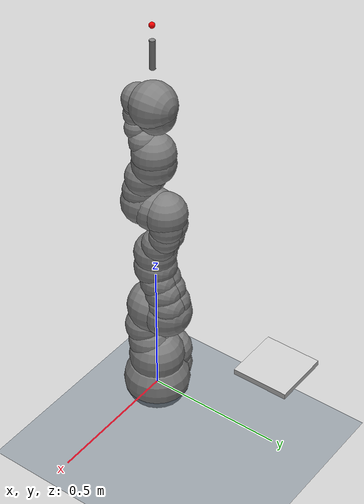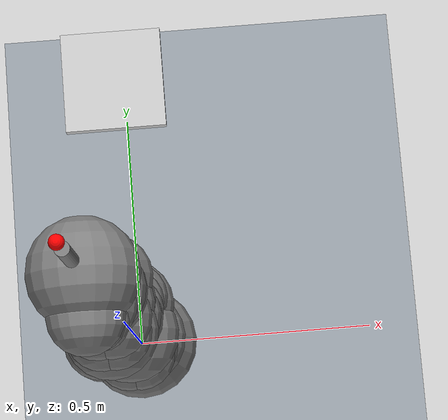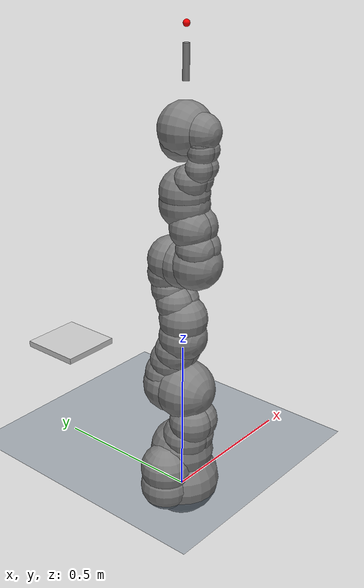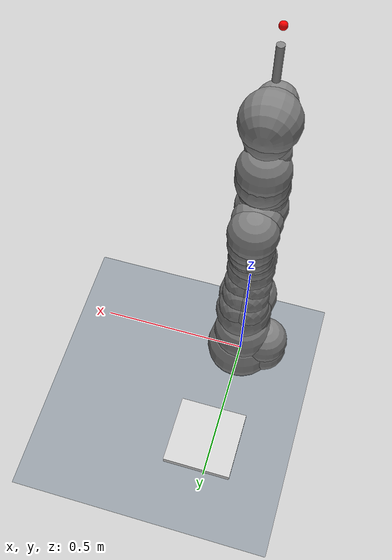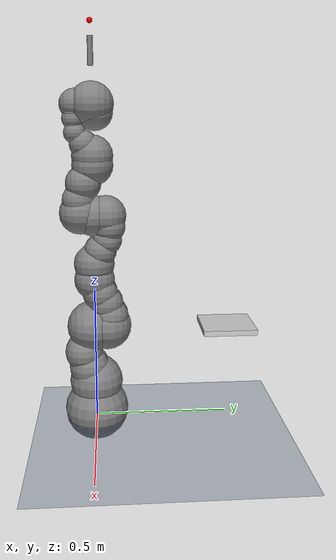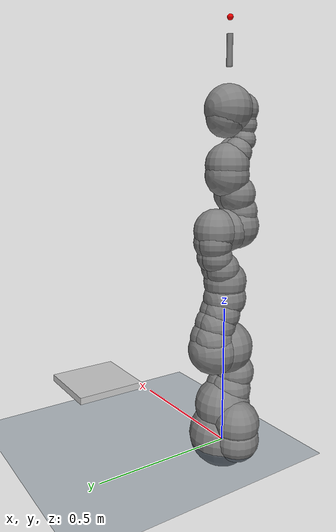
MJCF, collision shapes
<mujoco model="iiwa14">
  <compiler angle="radian" meshdir="assets" />

  <option integrator="implicitfast"  gravity="0 0 0" timestep="0.001" />

  <visual>
    <scale forcewidth="0.01" framewidth="0.01" contactwidth="0.01"/>
    <global offwidth="1920" offheight="1080"/>
  </visual>

  <default>
    <default class="iiwa">
      <material specular="0.5" shininess="0.25"/>

      <default class="visual">
        <geom type="mesh" contype="0" conaffinity="0" group="2" material="gray"/>
      </default>
      <default class="collision">
        <geom group="3"/>
      </default>
      <site size="0.001" rgba="1 0 0 1" group="4"/>

    </default>
    <joint armature="0" damping="0" limited="false" />
  </default>

  <asset>
    <texture name="grid" type="2d" builtin="checker" width="512" height="512" rgb1=".1 .2 .3" rgb2=".2 .3 .4"/>
    <material name="grid" texture="grid" texrepeat="1 1" texuniform="true" reflectance="0."/>

    <texture type="skybox" builtin="gradient" rgb1="0.3 0.5 0.7" rgb2="0 0 0" width="512" height="3072"/>
    <texture type="2d" name="groundplane" builtin="checker" mark="edge" rgb1="0.2 0.3 0.4" rgb2="0.1 0.2 0.3" markrgb="0.8 0.8 0.8" width="300" height="300"/>
    <material name="groundplane" texture="groundplane" texuniform="true" texrepeat="5 5" reflectance="0.2"/>

    <material class="iiwa" name="gray" rgba="0.4 0.4 0.4 1"/>
    <material class="iiwa" name="light_gray" rgba="0.6 0.6 0.6 1"/>
    <material class="iiwa" name="black" rgba="0 0 0 1"/>
    <material class="iiwa" name="orange" rgba="1 0.423529 0.0392157 1"/>

    <mesh file="link_0.obj"/>
    <mesh file="link_1.obj"/>
    <mesh file="link_2_orange.obj"/>
    <mesh file="link_2_grey.obj"/>
    <mesh file="link_3.obj"/>
    <mesh file="band.obj"/>
    <mesh file="kuka.obj"/>
    <mesh file="link_4_orange.obj"/>
    <mesh file="link_4_grey.obj"/>
    <mesh file="link_5.obj"/>
    <mesh file="link_6_orange.obj"/>
    <mesh file="link_6_grey.obj"/>
    <mesh file="link_7.obj"/>
  </asset>

  <worldbody>
  <light pos="0 0 1.5" dir="0 0 -1" directional="true"/>
<geom name="floor" size="0 0 0.05" type="plane" material="groundplane"/>
    <body name="base" childclass="iiwa">
      <inertial mass="5" pos="-0.1 0 0.07" diaginertia="0.05 0.06 0.03"/>
      <geom class="visual" mesh="link_0"/>
      <geom class="collision" size="0.12" pos="0 0 0.03"/>
      <geom class="collision" size="0.08" pos="-0.08 0 0.103"/>
      <geom class="collision" size="0.08" pos="-0.08 0 0.04"/>
      <geom class="collision" size="0.1" pos="0 0 0.14"/>
      <body name="link1" pos="0 0 0.1575">
        <inertial mass="4" pos="0 -0.03 0.12" diaginertia="0.1 0.09 0.02"/>
        <joint name="joint1" pos="0 0 0" axis="0 0 1"/>
        <geom class="visual" mesh="link_1"/>
        <geom class="collision" size="0.08" pos="0 0 -0.0005"/>
        <geom class="collision" size="0.075" pos="0.01 -0.025 0.0425"/>
        <geom class="collision" size="0.075" pos="-0.01 -0.025 0.0425"/>
        <geom class="collision" size="0.07" pos="0.01 -0.045 0.1025"/>
        <geom class="collision" size="0.07" pos="-0.01 -0.045 0.1025"/>
        <body name="link2" pos="0 0 0.2025" quat="0 0 1 1">
          <inertial mass="4" pos="0.0003 0.059 0.042" diaginertia="0.05 0.044 0.018" quat="0.707107 0.707107 0 0"/>
          <joint name="joint2" pos="0 0 0" axis="0 0 1"/>
          <geom class="visual" material="orange" mesh="link_2_orange"/>
          <geom class="visual" mesh="link_2_grey"/>
          <geom class="collision" size="0.095" pos="0 0 -0.01"/>
          <geom class="collision" size="0.09" pos="0 0 0.045"/>
          <geom class="collision" size="0.07" pos="-0.01 0.04 0.054"/>
          <geom class="collision" size="0.065" pos="-0.01 0.09 0.04"/>
          <geom class="collision" size="0.065" pos="-0.01 0.13 0.02"/>
          <geom class="collision" size="0.07" pos="0.01 0.04 0.054"/>
          <geom class="collision" size="0.065" pos="0.01 0.09 0.04"/>
          <geom class="collision" size="0.065" pos="0.01 0.13 0.02"/>
          <geom class="collision" size="0.075" pos="0 0.18 0"/>
          <body name="link3" pos="0 0.2045 0" quat="0 0 1 1">
            <inertial mass="3" pos="0 0.03 0.13" diaginertia="0.025 0.0238 0.0076"/>
            <joint name="joint3" pos="0 0 0" axis="0 0 1"/>
            <geom class="visual" mesh="link_3"/>
            <geom class="visual" material="light_gray" mesh="band"/>
            <geom class="visual" material="black" mesh="kuka"/>
            <geom class="collision" size="0.075" pos="0 0 0.0355"/>
            <geom class="collision" size="0.06" pos="0.01 0.023 0.0855"/>
            <geom class="collision" size="0.055" pos="0.01 0.048 0.1255"/>
            <geom class="collision" size="0.06" pos="0.01 0.056 0.1755"/>
            <geom class="collision" size="0.06" pos="-0.01 0.023 0.0855"/>
            <geom class="collision" size="0.055" pos="-0.01 0.048 0.1255"/>
            <geom class="collision" size="0.06" pos="-0.01 0.056 0.1755"/>
            <geom class="collision" size="0.075" pos="0 0.045 0.2155"/>
            <geom class="collision" size="0.075" pos="0 0 0.2155"/>
            <body name="link4" pos="0 0 0.2155" quat="1 1 0 0">
              <inertial mass="2.7" pos="0 0.067 0.034" diaginertia="0.03 0.029 0.01" quat="1 1 0 0"/>
              <joint name="joint4" pos="0 0 0" axis="0 0 1"/>
              <geom class="visual" material="orange" mesh="link_4_orange"/>
              <geom class="visual" mesh="link_4_grey"/>
              <geom class="collision" size="0.078" pos="0 0.01 0.046"/>
              <geom class="collision" size="0.06" pos="0.01 0.06 0.052"/>
              <geom class="collision" size="0.065" pos="0.01 0.12 0.034"/>
              <geom class="collision" size="0.06" pos="-0.01 0.06 0.052"/>
              <geom class="collision" size="0.065" pos="-0.01 0.12 0.034"/>
              <geom class="collision" size="0.075" pos="0 0.184 0"/>
              <body name="link5" pos="0 0.1845 0" quat="0 0 1 1">
                <inertial mass="1.7" pos="0.0001 0.021 0.076" diaginertia="0.02 0.018 0.005"/>
                <joint name="joint5" pos="0 0 0" axis="0 0 1"/>
                <geom class="visual" mesh="link_5"/>
                <geom class="visual" material="light_gray" mesh="band"/>
                <geom class="visual" material="black" mesh="kuka"/>
                <geom class="collision" size="0.075" pos="0 0 0.0335"/>
                <geom class="collision" size="0.05" pos="-0.012 0.031 0.0755"/>
                <geom class="collision" size="0.05" pos="0.012 0.031 0.0755"/>
                <geom class="collision" size="0.04" pos="-0.012 0.06 0.1155"/>
                <geom class="collision" size="0.04" pos="0.012 0.06 0.1155"/>
                <geom class="collision" size="0.04" pos="-0.01 0.065 0.1655"/>
                <geom class="collision" size="0.04" pos="0.01 0.065 0.1655"/>
                <geom class="collision" size="0.035" pos="-0.012 0.065 0.1855"/>
                <geom class="collision" size="0.035" pos="0.012 0.065 0.1855"/>
                <body name="link6" pos="0 0 0.2155" quat="1 1 0 0">
                  <inertial mass="1.8" pos="0 0.0006 0.0004" diaginertia="0.005 0.0047 0.0036" quat="1 1 0 0"/>
                  <joint name="joint6" pos="0 0 0" axis="0 0 1"/>
                  <geom class="visual" material="orange" mesh="link_6_orange"/>
                  <geom class="visual" mesh="link_6_grey"/>
                  <geom class="collision" size="0.055" pos="0 0 -0.059"/>
                  <geom class="collision" size="0.065" pos="0 -0.03 0.011"/>
                  <geom class="collision" size="0.08"/>
                  <body name="link7" pos="0 0.081 0" quat="0 0 1 1">
                    <inertial mass="0.3" pos="0 0 0.02" diaginertia="0.001 0.001 0.001"/>
                    <joint name="joint7" pos="0 0 0" axis="0 0 1"/>
                    <geom class="visual" mesh="link_7"/>

                    <site pos="0 0 0.045" name="attachment_site"/>

                    <body name="tool" pos="0 0 0.1">
                      <inertial mass="0.5" pos="0 0 0" diaginertia="0.1 0.1 0.1"/>
                      <geom size="0.01 0.05" type="cylinder" pos="0 0 0.0" />
                      <body name='contact' pos="0 0 0.1">
                        <inertial mass="1" pos="0 0 0" diaginertia="0.1 0.1 0.1"/>
                        <site pos="0 0 0" name="sensor_site"/>
                        <geom name="contact_geom" size="0.01 " type="sphere" pos="0 0 0.0" rgba="1 0 0 1"/>
                      </body>
                    </body>
                  </body>
                </body>
              </body>
            </body>
          </body>
        </body>
      </body>
    </body>
    <body name='plane' pos='0 0.5 0.35'>
      <geom name="contact_geom2" type='box' size='0.1 0.1 0.01' rgba='0.8 0.8 0.8 1'/>
    </body>

    <site name="eef_marker" pos="0 0 0" size="0.015 0.015 0.015" rgba="1 0 0 0.6" type="sphere"/>
    <site name="vis" pos="0 0 0" size="0.015 0.015 0.015" rgba="0 0 1 0.6" type="sphere"/>
    <camera name="track_cam" mode="targetbody" pos="0.5 1.3 0.8" target="tool"/>
  </worldbody>

  <contact>
    <exclude body1="base" body2="link1"/>
  </contact>

  <actuator>
    <general name="actuator1" joint="joint1" />
    <general name="actuator2" joint="joint2" />
    <general name="actuator3" joint="joint3" />
    <general name="actuator4" joint="joint4" />
    <general name="actuator5" joint="joint5" />
    <general name="actuator6" joint="joint6" />
    <general name="actuator7" joint="joint7" />
  </actuator>

  <sensor>
    <framepos name="body1_position" objtype='body' objname="contact"/>
    <force name="force_sensor" site="sensor_site"/>
</sensor>

</mujoco>
